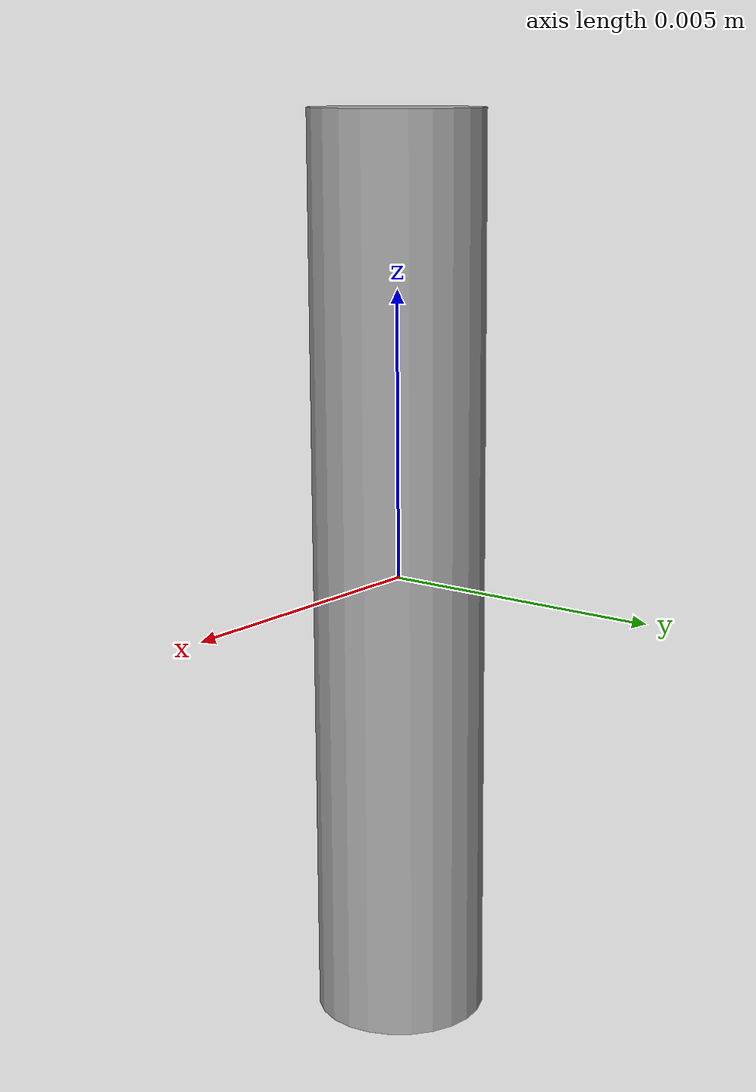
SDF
<?xml version="1.0"?>
<sdf version="1.9">
  <model name="m3_screw">

    <link name="link">
      <inertial>
        <mass>0.001</mass>
        <inertia>
          <ixx>2.19e-8</ixx>  <ixy>0</ixy>  <ixz>0</ixz>
          <iyy>2.19e-8</iyy>  <iyz>0</iyz>
          <izz>1.13e-9</izz>
        </inertia>
      </inertial>

      <collision name="collision">
        <geometry>
          <cylinder><radius>0.0015</radius><length>0.016</length></cylinder>
        </geometry>
      </collision>

      <visual name="visual">
        <geometry>
          <cylinder><radius>0.0015</radius><length>0.016</length></cylinder>
        </geometry>
        <material>
          <ambient>0.4 0.4 0.4 1</ambient>
          <diffuse>0.65 0.65 0.65 1</diffuse>
          <specular>0.8 0.8 0.8 1</specular>
        </material>
      </visual>
    </link>

  </model>
</sdf>
